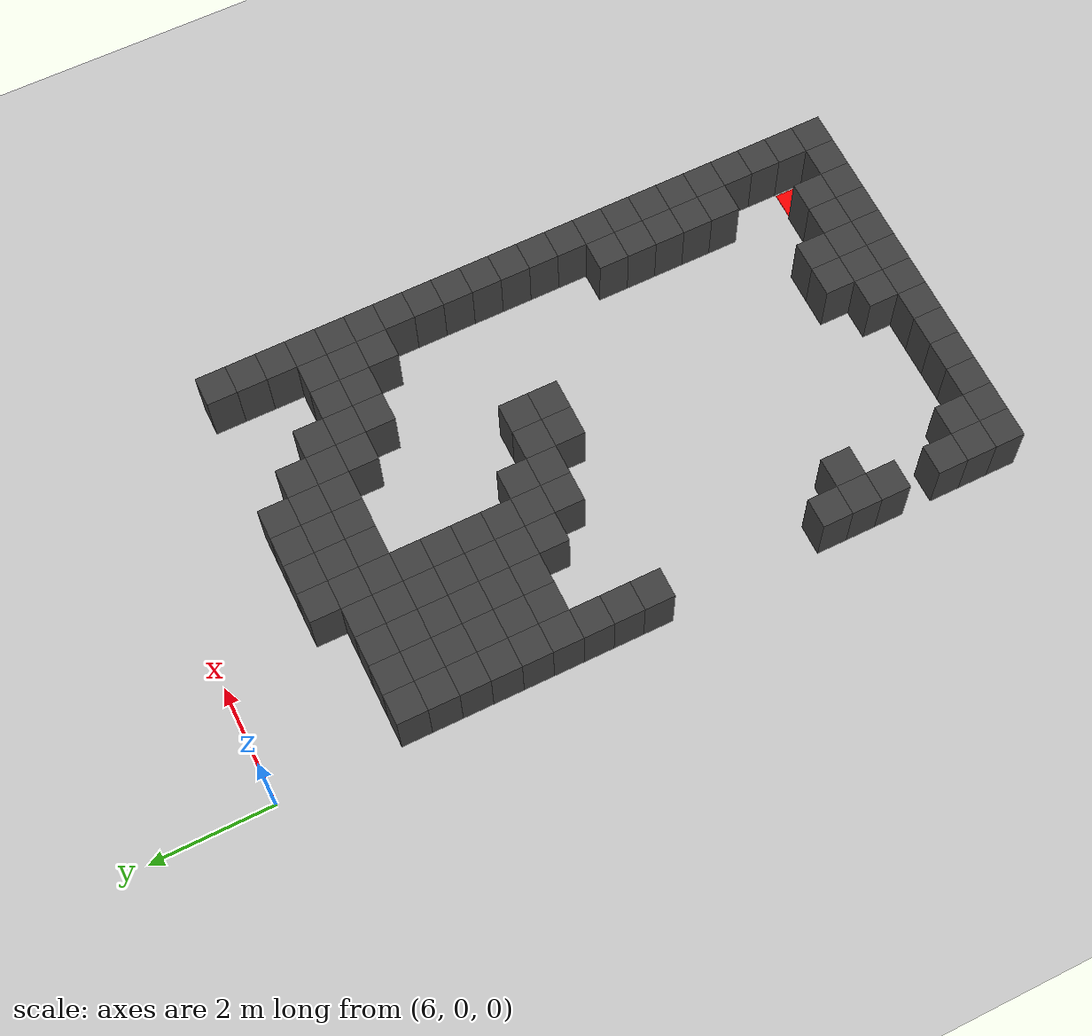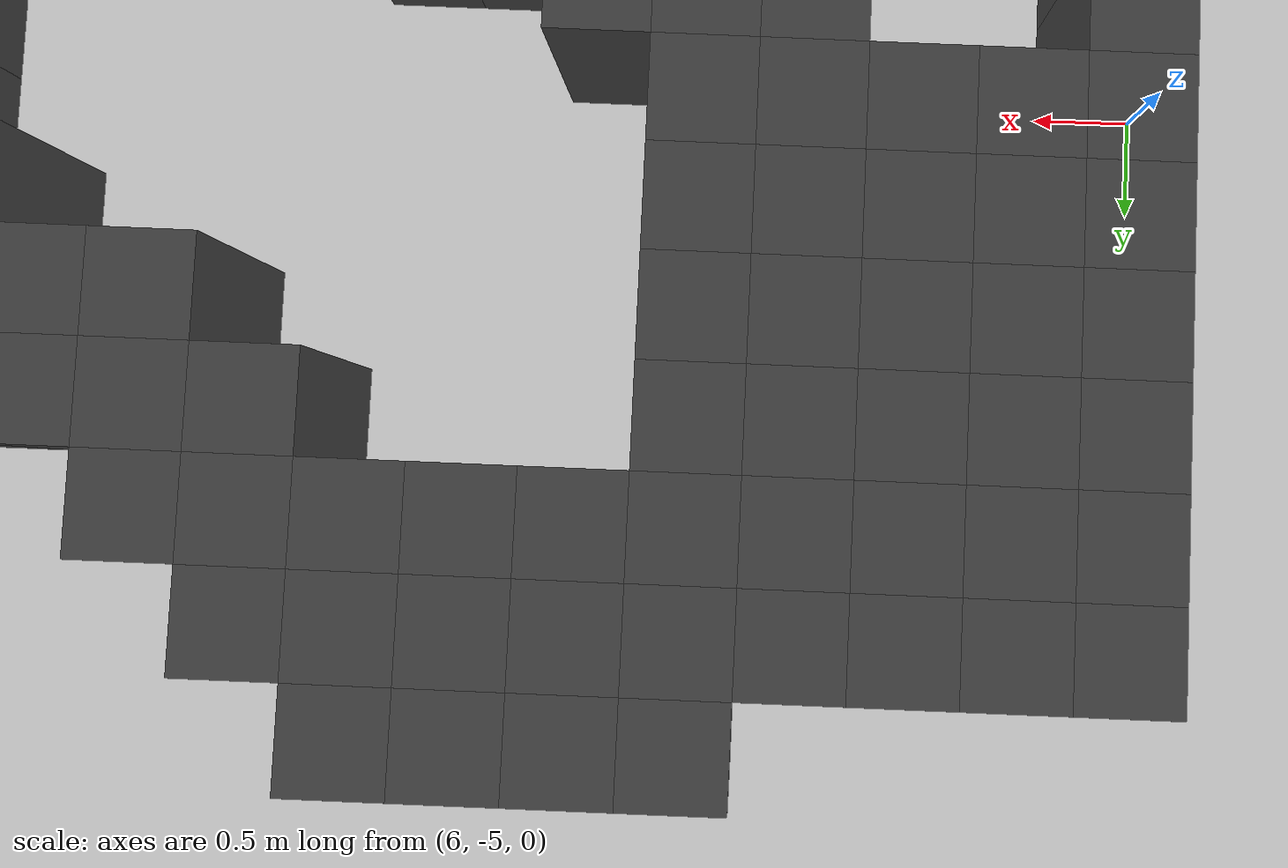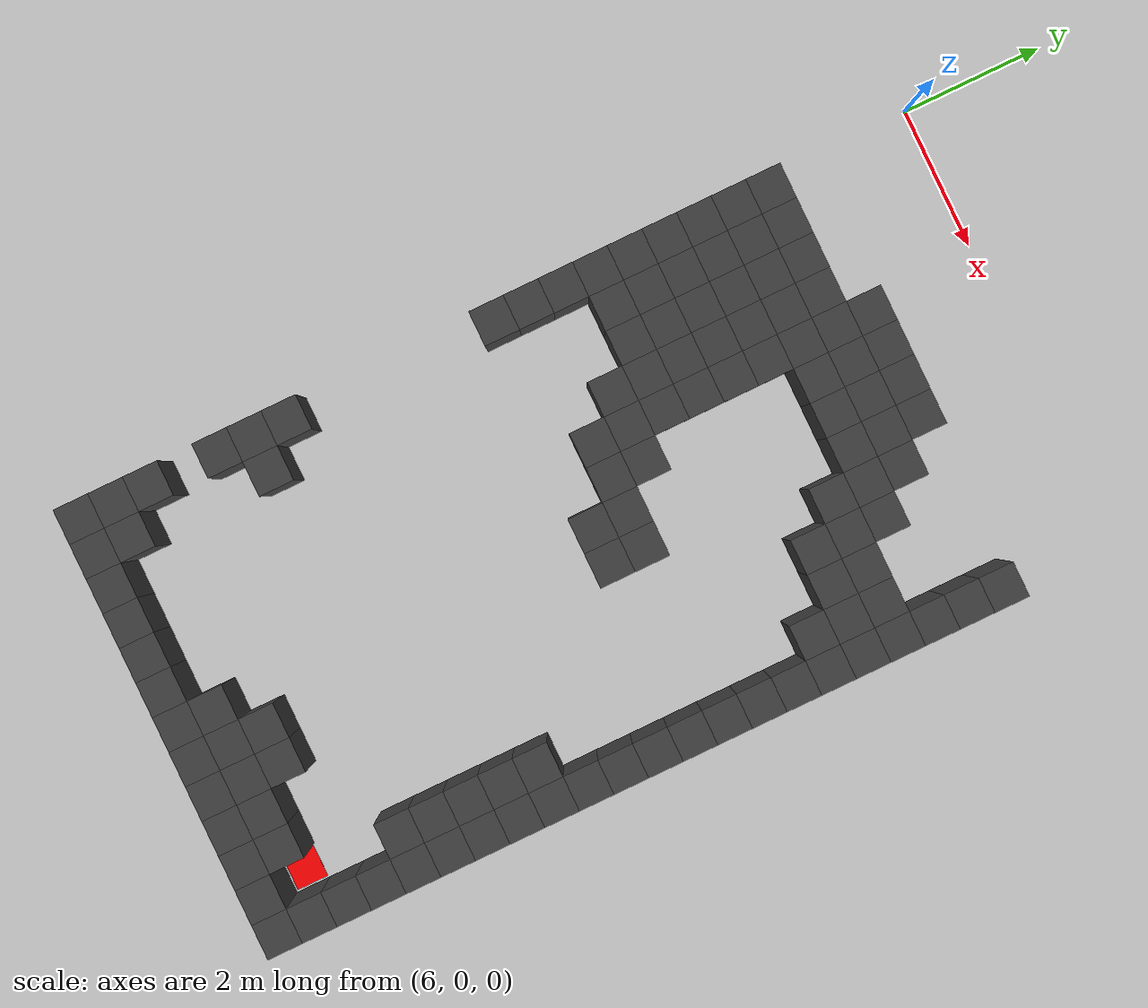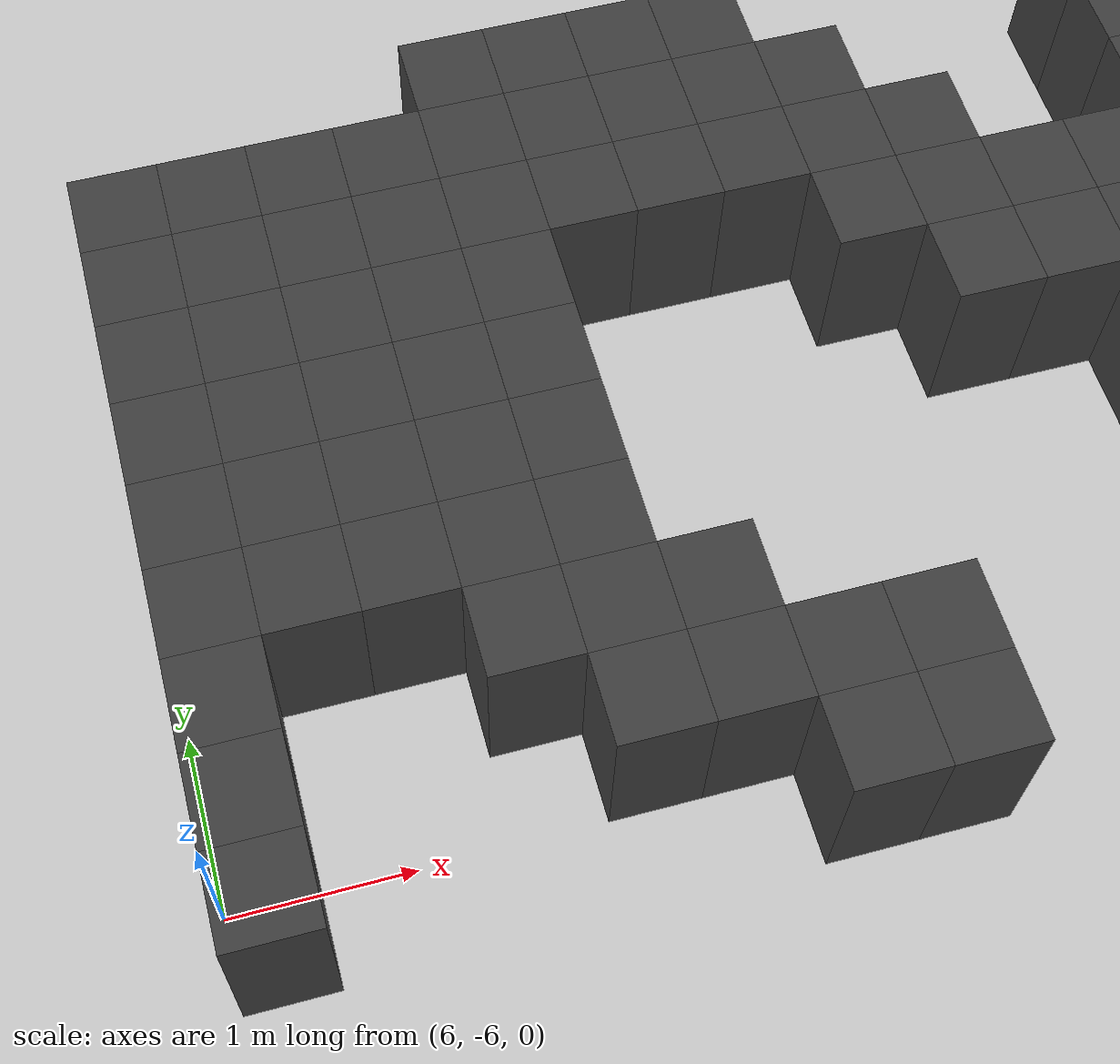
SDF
<sdf version="1.7">
 <world name="map_9061">
  <model name="ground_plane">
   <static>true</static>
   <link name="link">
    <collision name="collision">
     <geometry><plane><normal>0 0 1</normal><size>200 200</size></plane></geometry>
    </collision>
    <visual name="visual">
     <geometry><plane><normal>0 0 1</normal><size>200 200</size></plane></geometry>
     <material><ambient>0.8 0.8 0.8 1</ambient><diffuse>0.8 0.8 0.8 1</diffuse></material>
    </visual>
   </link>
  </model>
  <model name="maze_environment">
   <static>true</static>
   <link name="wall_480">
    <pose>8.250 -1.750 0.500 0 0 0</pose>
    <collision name="col"><geometry><box><size>0.5 0.5 1.0</size></box></geometry></collision>
    <visual name="vis">
     <geometry><box><size>0.5 0.5 1.0</size></box></geometry>
     <material><ambient>0.15 0.15 0.15 1</ambient><diffuse>0.25 0.25 0.25 1</diffuse></material>
    </visual>
   </link>
   <link name="wall_481">
    <pose>8.750 -1.750 0.500 0 0 0</pose>
    <collision name="col"><geometry><box><size>0.5 0.5 1.0</size></box></geometry></collision>
    <visual name="vis">
     <geometry><box><size>0.5 0.5 1.0</size></box></geometry>
     <material><ambient>0.15 0.15 0.15 1</ambient><diffuse>0.25 0.25 0.25 1</diffuse></material>
    </visual>
   </link>
   <link name="wall_482">
    <pose>9.250 -1.750 0.500 0 0 0</pose>
    <collision name="col"><geometry><box><size>0.5 0.5 1.0</size></box></geometry></collision>
    <visual name="vis">
     <geometry><box><size>0.5 0.5 1.0</size></box></geometry>
     <material><ambient>0.15 0.15 0.15 1</ambient><diffuse>0.25 0.25 0.25 1</diffuse></material>
    </visual>
   </link>
   <link name="wall_483">
    <pose>9.750 -1.750 0.500 0 0 0</pose>
    <collision name="col"><geometry><box><size>0.5 0.5 1.0</size></box></geometry></collision>
    <visual name="vis">
     <geometry><box><size>0.5 0.5 1.0</size></box></geometry>
     <material><ambient>0.15 0.15 0.15 1</ambient><diffuse>0.25 0.25 0.25 1</diffuse></material>
    </visual>
   </link>
   <link name="wall_484">
    <pose>12.250 -1.750 0.500 0 0 0</pose>
    <collision name="col"><geometry><box><size>0.5 0.5 1.0</size></box></geometry></collision>
    <visual name="vis">
     <geometry><box><size>0.5 0.5 1.0</size></box></geometry>
     <material><ambient>0.15 0.15 0.15 1</ambient><diffuse>0.25 0.25 0.25 1</diffuse></material>
    </visual>
   </link>
   <link name="wall_499">
    <pose>6.250 -2.250 0.500 0 0 0</pose>
    <collision name="col"><geometry><box><size>0.5 0.5 1.0</size></box></geometry></collision>
    <visual name="vis">
     <geometry><box><size>0.5 0.5 1.0</size></box></geometry>
     <material><ambient>0.15 0.15 0.15 1</ambient><diffuse>0.25 0.25 0.25 1</diffuse></material>
    </visual>
   </link>
   <link name="wall_500">
    <pose>6.750 -2.250 0.500 0 0 0</pose>
    <collision name="col"><geometry><box><size>0.5 0.5 1.0</size></box></geometry></collision>
    <visual name="vis">
     <geometry><box><size>0.5 0.5 1.0</size></box></geometry>
     <material><ambient>0.15 0.15 0.15 1</ambient><diffuse>0.25 0.25 0.25 1</diffuse></material>
    </visual>
   </link>
   <link name="wall_501">
    <pose>7.250 -2.250 0.500 0 0 0</pose>
    <collision name="col"><geometry><box><size>0.5 0.5 1.0</size></box></geometry></collision>
    <visual name="vis">
     <geometry><box><size>0.5 0.5 1.0</size></box></geometry>
     <material><ambient>0.15 0.15 0.15 1</ambient><diffuse>0.25 0.25 0.25 1</diffuse></material>
    </visual>
   </link>
   <link name="wall_502">
    <pose>7.750 -2.250 0.500 0 0 0</pose>
    <collision name="col"><geometry><box><size>0.5 0.5 1.0</size></box></geometry></collision>
    <visual name="vis">
     <geometry><box><size>0.5 0.5 1.0</size></box></geometry>
     <material><ambient>0.15 0.15 0.15 1</ambient><diffuse>0.25 0.25 0.25 1</diffuse></material>
    </visual>
   </link>
   <link name="wall_503">
    <pose>8.250 -2.250 0.500 0 0 0</pose>
    <collision name="col"><geometry><box><size>0.5 0.5 1.0</size></box></geometry></collision>
    <visual name="vis">
     <geometry><box><size>0.5 0.5 1.0</size></box></geometry>
     <material><ambient>0.15 0.15 0.15 1</ambient><diffuse>0.25 0.25 0.25 1</diffuse></material>
    </visual>
   </link>
   <link name="wall_504">
    <pose>8.750 -2.250 0.500 0 0 0</pose>
    <collision name="col"><geometry><box><size>0.5 0.5 1.0</size></box></geometry></collision>
    <visual name="vis">
     <geometry><box><size>0.5 0.5 1.0</size></box></geometry>
     <material><ambient>0.15 0.15 0.15 1</ambient><diffuse>0.25 0.25 0.25 1</diffuse></material>
    </visual>
   </link>
   <link name="wall_505">
    <pose>9.250 -2.250 0.500 0 0 0</pose>
    <collision name="col"><geometry><box><size>0.5 0.5 1.0</size></box></geometry></collision>
    <visual name="vis">
     <geometry><box><size>0.5 0.5 1.0</size></box></geometry>
     <material><ambient>0.15 0.15 0.15 1</ambient><diffuse>0.25 0.25 0.25 1</diffuse></material>
    </visual>
   </link>
   <link name="wall_506">
    <pose>9.750 -2.250 0.500 0 0 0</pose>
    <collision name="col"><geometry><box><size>0.5 0.5 1.0</size></box></geometry></collision>
    <visual name="vis">
     <geometry><box><size>0.5 0.5 1.0</size></box></geometry>
     <material><ambient>0.15 0.15 0.15 1</ambient><diffuse>0.25 0.25 0.25 1</diffuse></material>
    </visual>
   </link>
   <link name="wall_507">
    <pose>10.250 -2.250 0.500 0 0 0</pose>
    <collision name="col"><geometry><box><size>0.5 0.5 1.0</size></box></geometry></collision>
    <visual name="vis">
     <geometry><box><size>0.5 0.5 1.0</size></box></geometry>
     <material><ambient>0.15 0.15 0.15 1</ambient><diffuse>0.25 0.25 0.25 1</diffuse></material>
    </visual>
   </link>
   <link name="wall_508">
    <pose>12.250 -2.250 0.500 0 0 0</pose>
    <collision name="col"><geometry><box><size>0.5 0.5 1.0</size></box></geometry></collision>
    <visual name="vis">
     <geometry><box><size>0.5 0.5 1.0</size></box></geometry>
     <material><ambient>0.15 0.15 0.15 1</ambient><diffuse>0.25 0.25 0.25 1</diffuse></material>
    </visual>
   </link>
   <link name="wall_530">
    <pose>6.250 -2.750 0.500 0 0 0</pose>
    <collision name="col"><geometry><box><size>0.5 0.5 1.0</size></box></geometry></collision>
    <visual name="vis">
     <geometry><box><size>0.5 0.5 1.0</size></box></geometry>
     <material><ambient>0.15 0.15 0.15 1</ambient><diffuse>0.25 0.25 0.25 1</diffuse></material>
    </visual>
   </link>
   <link name="wall_531">
    <pose>6.750 -2.750 0.500 0 0 0</pose>
    <collision name="col"><geometry><box><size>0.5 0.5 1.0</size></box></geometry></collision>
    <visual name="vis">
     <geometry><box><size>0.5 0.5 1.0</size></box></geometry>
     <material><ambient>0.15 0.15 0.15 1</ambient><diffuse>0.25 0.25 0.25 1</diffuse></material>
    </visual>
   </link>
   <link name="wall_532">
    <pose>7.250 -2.750 0.500 0 0 0</pose>
    <collision name="col"><geometry><box><size>0.5 0.5 1.0</size></box></geometry></collision>
    <visual name="vis">
     <geometry><box><size>0.5 0.5 1.0</size></box></geometry>
     <material><ambient>0.15 0.15 0.15 1</ambient><diffuse>0.25 0.25 0.25 1</diffuse></material>
    </visual>
   </link>
   <link name="wall_533">
    <pose>7.750 -2.750 0.500 0 0 0</pose>
    <collision name="col"><geometry><box><size>0.5 0.5 1.0</size></box></geometry></collision>
    <visual name="vis">
     <geometry><box><size>0.5 0.5 1.0</size></box></geometry>
     <material><ambient>0.15 0.15 0.15 1</ambient><diffuse>0.25 0.25 0.25 1</diffuse></material>
    </visual>
   </link>
   <link name="wall_534">
    <pose>8.250 -2.750 0.500 0 0 0</pose>
    <collision name="col"><geometry><box><size>0.5 0.5 1.0</size></box></geometry></collision>
    <visual name="vis">
     <geometry><box><size>0.5 0.5 1.0</size></box></geometry>
     <material><ambient>0.15 0.15 0.15 1</ambient><diffuse>0.25 0.25 0.25 1</diffuse></material>
    </visual>
   </link>
   <link name="wall_535">
    <pose>8.750 -2.750 0.500 0 0 0</pose>
    <collision name="col"><geometry><box><size>0.5 0.5 1.0</size></box></geometry></collision>
    <visual name="vis">
     <geometry><box><size>0.5 0.5 1.0</size></box></geometry>
     <material><ambient>0.15 0.15 0.15 1</ambient><diffuse>0.25 0.25 0.25 1</diffuse></material>
    </visual>
   </link>
   <link name="wall_536">
    <pose>9.250 -2.750 0.500 0 0 0</pose>
    <collision name="col"><geometry><box><size>0.5 0.5 1.0</size></box></geometry></collision>
    <visual name="vis">
     <geometry><box><size>0.5 0.5 1.0</size></box></geometry>
     <material><ambient>0.15 0.15 0.15 1</ambient><diffuse>0.25 0.25 0.25 1</diffuse></material>
    </visual>
   </link>
   <link name="wall_537">
    <pose>9.750 -2.750 0.500 0 0 0</pose>
    <collision name="col"><geometry><box><size>0.5 0.5 1.0</size></box></geometry></collision>
    <visual name="vis">
     <geometry><box><size>0.5 0.5 1.0</size></box></geometry>
     <material><ambient>0.15 0.15 0.15 1</ambient><diffuse>0.25 0.25 0.25 1</diffuse></material>
    </visual>
   </link>
   <link name="wall_538">
    <pose>10.250 -2.750 0.500 0 0 0</pose>
    <collision name="col"><geometry><box><size>0.5 0.5 1.0</size></box></geometry></collision>
    <visual name="vis">
     <geometry><box><size>0.5 0.5 1.0</size></box></geometry>
     <material><ambient>0.15 0.15 0.15 1</ambient><diffuse>0.25 0.25 0.25 1</diffuse></material>
    </visual>
   </link>
   <link name="wall_539">
    <pose>10.750 -2.750 0.500 0 0 0</pose>
    <collision name="col"><geometry><box><size>0.5 0.5 1.0</size></box></geometry></collision>
    <visual name="vis">
     <geometry><box><size>0.5 0.5 1.0</size></box></geometry>
     <material><ambient>0.15 0.15 0.15 1</ambient><diffuse>0.25 0.25 0.25 1</diffuse></material>
    </visual>
   </link>
   <link name="wall_540">
    <pose>12.250 -2.750 0.500 0 0 0</pose>
    <collision name="col"><geometry><box><size>0.5 0.5 1.0</size></box></geometry></collision>
    <visual name="vis">
     <geometry><box><size>0.5 0.5 1.0</size></box></geometry>
     <material><ambient>0.15 0.15 0.15 1</ambient><diffuse>0.25 0.25 0.25 1</diffuse></material>
    </visual>
   </link>
   <link name="wall_561">
    <pose>6.250 -3.250 0.500 0 0 0</pose>
    <collision name="col"><geometry><box><size>0.5 0.5 1.0</size></box></geometry></collision>
    <visual name="vis">
     <geometry><box><size>0.5 0.5 1.0</size></box></geometry>
     <material><ambient>0.15 0.15 0.15 1</ambient><diffuse>0.25 0.25 0.25 1</diffuse></material>
    </visual>
   </link>
   <link name="wall_562">
    <pose>6.750 -3.250 0.500 0 0 0</pose>
    <collision name="col"><geometry><box><size>0.5 0.5 1.0</size></box></geometry></collision>
    <visual name="vis">
     <geometry><box><size>0.5 0.5 1.0</size></box></geometry>
     <material><ambient>0.15 0.15 0.15 1</ambient><diffuse>0.25 0.25 0.25 1</diffuse></material>
    </visual>
   </link>
   <link name="wall_563">
    <pose>7.250 -3.250 0.500 0 0 0</pose>
    <collision name="col"><geometry><box><size>0.5 0.5 1.0</size></box></geometry></collision>
    <visual name="vis">
     <geometry><box><size>0.5 0.5 1.0</size></box></geometry>
     <material><ambient>0.15 0.15 0.15 1</ambient><diffuse>0.25 0.25 0.25 1</diffuse></material>
    </visual>
   </link>
   <link name="wall_564">
    <pose>7.750 -3.250 0.500 0 0 0</pose>
    <collision name="col"><geometry><box><size>0.5 0.5 1.0</size></box></geometry></collision>
    <visual name="vis">
     <geometry><box><size>0.5 0.5 1.0</size></box></geometry>
     <material><ambient>0.15 0.15 0.15 1</ambient><diffuse>0.25 0.25 0.25 1</diffuse></material>
    </visual>
   </link>
   <link name="wall_565">
    <pose>8.250 -3.250 0.500 0 0 0</pose>
    <collision name="col"><geometry><box><size>0.5 0.5 1.0</size></box></geometry></collision>
    <visual name="vis">
     <geometry><box><size>0.5 0.5 1.0</size></box></geometry>
     <material><ambient>0.15 0.15 0.15 1</ambient><diffuse>0.25 0.25 0.25 1</diffuse></material>
    </visual>
   </link>
   <link name="wall_566">
    <pose>10.250 -3.250 0.500 0 0 0</pose>
    <collision name="col"><geometry><box><size>0.5 0.5 1.0</size></box></geometry></collision>
    <visual name="vis">
     <geometry><box><size>0.5 0.5 1.0</size></box></geometry>
     <material><ambient>0.15 0.15 0.15 1</ambient><diffuse>0.25 0.25 0.25 1</diffuse></material>
    </visual>
   </link>
   <link name="wall_567">
    <pose>10.750 -3.250 0.500 0 0 0</pose>
    <collision name="col"><geometry><box><size>0.5 0.5 1.0</size></box></geometry></collision>
    <visual name="vis">
     <geometry><box><size>0.5 0.5 1.0</size></box></geometry>
     <material><ambient>0.15 0.15 0.15 1</ambient><diffuse>0.25 0.25 0.25 1</diffuse></material>
    </visual>
   </link>
   <link name="wall_568">
    <pose>11.250 -3.250 0.500 0 0 0</pose>
    <collision name="col"><geometry><box><size>0.5 0.5 1.0</size></box></geometry></collision>
    <visual name="vis">
     <geometry><box><size>0.5 0.5 1.0</size></box></geometry>
     <material><ambient>0.15 0.15 0.15 1</ambient><diffuse>0.25 0.25 0.25 1</diffuse></material>
    </visual>
   </link>
   <link name="wall_569">
    <pose>11.750 -3.250 0.500 0 0 0</pose>
    <collision name="col"><geometry><box><size>0.5 0.5 1.0</size></box></geometry></collision>
    <visual name="vis">
     <geometry><box><size>0.5 0.5 1.0</size></box></geometry>
     <material><ambient>0.15 0.15 0.15 1</ambient><diffuse>0.25 0.25 0.25 1</diffuse></material>
    </visual>
   </link>
   <link name="wall_570">
    <pose>12.250 -3.250 0.500 0 0 0</pose>
    <collision name="col"><geometry><box><size>0.5 0.5 1.0</size></box></geometry></collision>
    <visual name="vis">
     <geometry><box><size>0.5 0.5 1.0</size></box></geometry>
     <material><ambient>0.15 0.15 0.15 1</ambient><diffuse>0.25 0.25 0.25 1</diffuse></material>
    </visual>
   </link>
   <link name="wall_591">
    <pose>6.250 -3.750 0.500 0 0 0</pose>
    <collision name="col"><geometry><box><size>0.5 0.5 1.0</size></box></geometry></collision>
    <visual name="vis">
     <geometry><box><size>0.5 0.5 1.0</size></box></geometry>
     <material><ambient>0.15 0.15 0.15 1</ambient><diffuse>0.25 0.25 0.25 1</diffuse></material>
    </visual>
   </link>
   <link name="wall_592">
    <pose>6.750 -3.750 0.500 0 0 0</pose>
    <collision name="col"><geometry><box><size>0.5 0.5 1.0</size></box></geometry></collision>
    <visual name="vis">
     <geometry><box><size>0.5 0.5 1.0</size></box></geometry>
     <material><ambient>0.15 0.15 0.15 1</ambient><diffuse>0.25 0.25 0.25 1</diffuse></material>
    </visual>
   </link>
   <link name="wall_593">
    <pose>7.250 -3.750 0.500 0 0 0</pose>
    <collision name="col"><geometry><box><size>0.5 0.5 1.0</size></box></geometry></collision>
    <visual name="vis">
     <geometry><box><size>0.5 0.5 1.0</size></box></geometry>
     <material><ambient>0.15 0.15 0.15 1</ambient><diffuse>0.25 0.25 0.25 1</diffuse></material>
    </visual>
   </link>
   <link name="wall_594">
    <pose>7.750 -3.750 0.500 0 0 0</pose>
    <collision name="col"><geometry><box><size>0.5 0.5 1.0</size></box></geometry></collision>
    <visual name="vis">
     <geometry><box><size>0.5 0.5 1.0</size></box></geometry>
     <material><ambient>0.15 0.15 0.15 1</ambient><diffuse>0.25 0.25 0.25 1</diffuse></material>
    </visual>
   </link>
   <link name="wall_595">
    <pose>8.250 -3.750 0.500 0 0 0</pose>
    <collision name="col"><geometry><box><size>0.5 0.5 1.0</size></box></geometry></collision>
    <visual name="vis">
     <geometry><box><size>0.5 0.5 1.0</size></box></geometry>
     <material><ambient>0.15 0.15 0.15 1</ambient><diffuse>0.25 0.25 0.25 1</diffuse></material>
    </visual>
   </link>
   <link name="wall_596">
    <pose>10.750 -3.750 0.500 0 0 0</pose>
    <collision name="col"><geometry><box><size>0.5 0.5 1.0</size></box></geometry></collision>
    <visual name="vis">
     <geometry><box><size>0.5 0.5 1.0</size></box></geometry>
     <material><ambient>0.15 0.15 0.15 1</ambient><diffuse>0.25 0.25 0.25 1</diffuse></material>
    </visual>
   </link>
   <link name="wall_597">
    <pose>11.250 -3.750 0.500 0 0 0</pose>
    <collision name="col"><geometry><box><size>0.5 0.5 1.0</size></box></geometry></collision>
    <visual name="vis">
     <geometry><box><size>0.5 0.5 1.0</size></box></geometry>
     <material><ambient>0.15 0.15 0.15 1</ambient><diffuse>0.25 0.25 0.25 1</diffuse></material>
    </visual>
   </link>
   <link name="wall_598">
    <pose>11.750 -3.750 0.500 0 0 0</pose>
    <collision name="col"><geometry><box><size>0.5 0.5 1.0</size></box></geometry></collision>
    <visual name="vis">
     <geometry><box><size>0.5 0.5 1.0</size></box></geometry>
     <material><ambient>0.15 0.15 0.15 1</ambient><diffuse>0.25 0.25 0.25 1</diffuse></material>
    </visual>
   </link>
   <link name="wall_599">
    <pose>12.250 -3.750 0.500 0 0 0</pose>
    <collision name="col"><geometry><box><size>0.5 0.5 1.0</size></box></geometry></collision>
    <visual name="vis">
     <geometry><box><size>0.5 0.5 1.0</size></box></geometry>
     <material><ambient>0.15 0.15 0.15 1</ambient><diffuse>0.25 0.25 0.25 1</diffuse></material>
    </visual>
   </link>
   <link name="wall_617">
    <pose>6.250 -4.250 0.500 0 0 0</pose>
    <collision name="col"><geometry><box><size>0.5 0.5 1.0</size></box></geometry></collision>
    <visual name="vis">
     <geometry><box><size>0.5 0.5 1.0</size></box></geometry>
     <material><ambient>0.15 0.15 0.15 1</ambient><diffuse>0.25 0.25 0.25 1</diffuse></material>
    </visual>
   </link>
   <link name="wall_618">
    <pose>6.750 -4.250 0.500 0 0 0</pose>
    <collision name="col"><geometry><box><size>0.5 0.5 1.0</size></box></geometry></collision>
    <visual name="vis">
     <geometry><box><size>0.5 0.5 1.0</size></box></geometry>
     <material><ambient>0.15 0.15 0.15 1</ambient><diffuse>0.25 0.25 0.25 1</diffuse></material>
    </visual>
   </link>
   <link name="wall_619">
    <pose>7.250 -4.250 0.500 0 0 0</pose>
    <collision name="col"><geometry><box><size>0.5 0.5 1.0</size></box></geometry></collision>
    <visual name="vis">
     <geometry><box><size>0.5 0.5 1.0</size></box></geometry>
     <material><ambient>0.15 0.15 0.15 1</ambient><diffuse>0.25 0.25 0.25 1</diffuse></material>
    </visual>
   </link>
   <link name="wall_620">
    <pose>7.750 -4.250 0.500 0 0 0</pose>
    <collision name="col"><geometry><box><size>0.5 0.5 1.0</size></box></geometry></collision>
    <visual name="vis">
     <geometry><box><size>0.5 0.5 1.0</size></box></geometry>
     <material><ambient>0.15 0.15 0.15 1</ambient><diffuse>0.25 0.25 0.25 1</diffuse></material>
    </visual>
   </link>
   <link name="wall_621">
    <pose>8.250 -4.250 0.500 0 0 0</pose>
    <collision name="col"><geometry><box><size>0.5 0.5 1.0</size></box></geometry></collision>
    <visual name="vis">
     <geometry><box><size>0.5 0.5 1.0</size></box></geometry>
     <material><ambient>0.15 0.15 0.15 1</ambient><diffuse>0.25 0.25 0.25 1</diffuse></material>
    </visual>
   </link>
   <link name="wall_622">
    <pose>11.750 -4.250 0.500 0 0 0</pose>
    <collision name="col"><geometry><box><size>0.5 0.5 1.0</size></box></geometry></collision>
    <visual name="vis">
     <geometry><box><size>0.5 0.5 1.0</size></box></geometry>
     <material><ambient>0.15 0.15 0.15 1</ambient><diffuse>0.25 0.25 0.25 1</diffuse></material>
    </visual>
   </link>
   <link name="wall_623">
    <pose>12.250 -4.250 0.500 0 0 0</pose>
    <collision name="col"><geometry><box><size>0.5 0.5 1.0</size></box></geometry></collision>
    <visual name="vis">
     <geometry><box><size>0.5 0.5 1.0</size></box></geometry>
     <material><ambient>0.15 0.15 0.15 1</ambient><diffuse>0.25 0.25 0.25 1</diffuse></material>
    </visual>
   </link>
   <link name="wall_637">
    <pose>6.250 -4.750 0.500 0 0 0</pose>
    <collision name="col"><geometry><box><size>0.5 0.5 1.0</size></box></geometry></collision>
    <visual name="vis">
     <geometry><box><size>0.5 0.5 1.0</size></box></geometry>
     <material><ambient>0.15 0.15 0.15 1</ambient><diffuse>0.25 0.25 0.25 1</diffuse></material>
    </visual>
   </link>
   <link name="wall_638">
    <pose>6.750 -4.750 0.500 0 0 0</pose>
    <collision name="col"><geometry><box><size>0.5 0.5 1.0</size></box></geometry></collision>
    <visual name="vis">
     <geometry><box><size>0.5 0.5 1.0</size></box></geometry>
     <material><ambient>0.15 0.15 0.15 1</ambient><diffuse>0.25 0.25 0.25 1</diffuse></material>
    </visual>
   </link>
   <link name="wall_639">
    <pose>7.250 -4.750 0.500 0 0 0</pose>
    <collision name="col"><geometry><box><size>0.5 0.5 1.0</size></box></geometry></collision>
    <visual name="vis">
     <geometry><box><size>0.5 0.5 1.0</size></box></geometry>
     <material><ambient>0.15 0.15 0.15 1</ambient><diffuse>0.25 0.25 0.25 1</diffuse></material>
    </visual>
   </link>
   <link name="wall_640">
    <pose>7.750 -4.750 0.500 0 0 0</pose>
    <collision name="col"><geometry><box><size>0.5 0.5 1.0</size></box></geometry></collision>
    <visual name="vis">
     <geometry><box><size>0.5 0.5 1.0</size></box></geometry>
     <material><ambient>0.15 0.15 0.15 1</ambient><diffuse>0.25 0.25 0.25 1</diffuse></material>
    </visual>
   </link>
   <link name="wall_641">
    <pose>8.250 -4.750 0.500 0 0 0</pose>
    <collision name="col"><geometry><box><size>0.5 0.5 1.0</size></box></geometry></collision>
    <visual name="vis">
     <geometry><box><size>0.5 0.5 1.0</size></box></geometry>
     <material><ambient>0.15 0.15 0.15 1</ambient><diffuse>0.25 0.25 0.25 1</diffuse></material>
    </visual>
   </link>
   <link name="wall_642">
    <pose>12.250 -4.750 0.500 0 0 0</pose>
    <collision name="col"><geometry><box><size>0.5 0.5 1.0</size></box></geometry></collision>
    <visual name="vis">
     <geometry><box><size>0.5 0.5 1.0</size></box></geometry>
     <material><ambient>0.15 0.15 0.15 1</ambient><diffuse>0.25 0.25 0.25 1</diffuse></material>
    </visual>
   </link>
   <link name="wall_652">
    <pose>6.250 -5.250 0.500 0 0 0</pose>
    <collision name="col"><geometry><box><size>0.5 0.5 1.0</size></box></geometry></collision>
    <visual name="vis">
     <geometry><box><size>0.5 0.5 1.0</size></box></geometry>
     <material><ambient>0.15 0.15 0.15 1</ambient><diffuse>0.25 0.25 0.25 1</diffuse></material>
    </visual>
   </link>
   <link name="wall_653">
    <pose>7.750 -5.250 0.500 0 0 0</pose>
    <collision name="col"><geometry><box><size>0.5 0.5 1.0</size></box></geometry></collision>
    <visual name="vis">
     <geometry><box><size>0.5 0.5 1.0</size></box></geometry>
     <material><ambient>0.15 0.15 0.15 1</ambient><diffuse>0.25 0.25 0.25 1</diffuse></material>
    </visual>
   </link>
   <link name="wall_654">
    <pose>8.250 -5.250 0.500 0 0 0</pose>
    <collision name="col"><geometry><box><size>0.5 0.5 1.0</size></box></geometry></collision>
    <visual name="vis">
     <geometry><box><size>0.5 0.5 1.0</size></box></geometry>
     <material><ambient>0.15 0.15 0.15 1</ambient><diffuse>0.25 0.25 0.25 1</diffuse></material>
    </visual>
   </link>
   <link name="wall_655">
    <pose>8.750 -5.250 0.500 0 0 0</pose>
    <collision name="col"><geometry><box><size>0.5 0.5 1.0</size></box></geometry></collision>
    <visual name="vis">
     <geometry><box><size>0.5 0.5 1.0</size></box></geometry>
     <material><ambient>0.15 0.15 0.15 1</ambient><diffuse>0.25 0.25 0.25 1</diffuse></material>
    </visual>
   </link>
   <link name="wall_656">
    <pose>12.250 -5.250 0.500 0 0 0</pose>
    <collision name="col"><geometry><box><size>0.5 0.5 1.0</size></box></geometry></collision>
    <visual name="vis">
     <geometry><box><size>0.5 0.5 1.0</size></box></geometry>
     <material><ambient>0.15 0.15 0.15 1</ambient><diffuse>0.25 0.25 0.25 1</diffuse></material>
    </visual>
   </link>
   <link name="wall_667">
    <pose>6.250 -5.750 0.500 0 0 0</pose>
    <collision name="col"><geometry><box><size>0.5 0.5 1.0</size></box></geometry></collision>
    <visual name="vis">
     <geometry><box><size>0.5 0.5 1.0</size></box></geometry>
     <material><ambient>0.15 0.15 0.15 1</ambient><diffuse>0.25 0.25 0.25 1</diffuse></material>
    </visual>
   </link>
   <link name="wall_668">
    <pose>8.250 -5.750 0.500 0 0 0</pose>
    <collision name="col"><geometry><box><size>0.5 0.5 1.0</size></box></geometry></collision>
    <visual name="vis">
     <geometry><box><size>0.5 0.5 1.0</size></box></geometry>
     <material><ambient>0.15 0.15 0.15 1</ambient><diffuse>0.25 0.25 0.25 1</diffuse></material>
    </visual>
   </link>
   <link name="wall_669">
    <pose>8.750 -5.750 0.500 0 0 0</pose>
    <collision name="col"><geometry><box><size>0.5 0.5 1.0</size></box></geometry></collision>
    <visual name="vis">
     <geometry><box><size>0.5 0.5 1.0</size></box></geometry>
     <material><ambient>0.15 0.15 0.15 1</ambient><diffuse>0.25 0.25 0.25 1</diffuse></material>
    </visual>
   </link>
   <link name="wall_670">
    <pose>9.250 -5.750 0.500 0 0 0</pose>
    <collision name="col"><geometry><box><size>0.5 0.5 1.0</size></box></geometry></collision>
    <visual name="vis">
     <geometry><box><size>0.5 0.5 1.0</size></box></geometry>
     <material><ambient>0.15 0.15 0.15 1</ambient><diffuse>0.25 0.25 0.25 1</diffuse></material>
    </visual>
   </link>
   <link name="wall_671">
    <pose>9.750 -5.750 0.500 0 0 0</pose>
    <collision name="col"><geometry><box><size>0.5 0.5 1.0</size></box></geometry></collision>
    <visual name="vis">
     <geometry><box><size>0.5 0.5 1.0</size></box></geometry>
     <material><ambient>0.15 0.15 0.15 1</ambient><diffuse>0.25 0.25 0.25 1</diffuse></material>
    </visual>
   </link>
   <link name="wall_672">
    <pose>12.250 -5.750 0.500 0 0 0</pose>
    <collision name="col"><geometry><box><size>0.5 0.5 1.0</size></box></geometry></collision>
    <visual name="vis">
     <geometry><box><size>0.5 0.5 1.0</size></box></geometry>
     <material><ambient>0.15 0.15 0.15 1</ambient><diffuse>0.25 0.25 0.25 1</diffuse></material>
    </visual>
   </link>
   <link name="wall_685">
    <pose>6.250 -6.250 0.500 0 0 0</pose>
    <collision name="col"><geometry><box><size>0.5 0.5 1.0</size></box></geometry></collision>
    <visual name="vis">
     <geometry><box><size>0.5 0.5 1.0</size></box></geometry>
     <material><ambient>0.15 0.15 0.15 1</ambient><diffuse>0.25 0.25 0.25 1</diffuse></material>
    </visual>
   </link>
   <link name="wall_686">
    <pose>9.250 -6.250 0.500 0 0 0</pose>
    <collision name="col"><geometry><box><size>0.5 0.5 1.0</size></box></geometry></collision>
    <visual name="vis">
     <geometry><box><size>0.5 0.5 1.0</size></box></geometry>
     <material><ambient>0.15 0.15 0.15 1</ambient><diffuse>0.25 0.25 0.25 1</diffuse></material>
    </visual>
   </link>
   <link name="wall_687">
    <pose>9.750 -6.250 0.500 0 0 0</pose>
    <collision name="col"><geometry><box><size>0.5 0.5 1.0</size></box></geometry></collision>
    <visual name="vis">
     <geometry><box><size>0.5 0.5 1.0</size></box></geometry>
     <material><ambient>0.15 0.15 0.15 1</ambient><diffuse>0.25 0.25 0.25 1</diffuse></material>
    </visual>
   </link>
   <link name="wall_688">
    <pose>12.250 -6.250 0.500 0 0 0</pose>
    <collision name="col"><geometry><box><size>0.5 0.5 1.0</size></box></geometry></collision>
    <visual name="vis">
     <geometry><box><size>0.5 0.5 1.0</size></box></geometry>
     <material><ambient>0.15 0.15 0.15 1</ambient><diffuse>0.25 0.25 0.25 1</diffuse></material>
    </visual>
   </link>
   <link name="wall_706">
    <pose>12.250 -6.750 0.500 0 0 0</pose>
    <collision name="col"><geometry><box><size>0.5 0.5 1.0</size></box></geometry></collision>
    <visual name="vis">
     <geometry><box><size>0.5 0.5 1.0</size></box></geometry>
     <material><ambient>0.15 0.15 0.15 1</ambient><diffuse>0.25 0.25 0.25 1</diffuse></material>
    </visual>
   </link>
   <link name="wall_723">
    <pose>12.250 -7.250 0.500 0 0 0</pose>
    <collision name="col"><geometry><box><size>0.5 0.5 1.0</size></box></geometry></collision>
    <visual name="vis">
     <geometry><box><size>0.5 0.5 1.0</size></box></geometry>
     <material><ambient>0.15 0.15 0.15 1</ambient><diffuse>0.25 0.25 0.25 1</diffuse></material>
    </visual>
   </link>
   <link name="wall_736">
    <pose>12.250 -7.750 0.500 0 0 0</pose>
    <collision name="col"><geometry><box><size>0.5 0.5 1.0</size></box></geometry></collision>
    <visual name="vis">
     <geometry><box><size>0.5 0.5 1.0</size></box></geometry>
     <material><ambient>0.15 0.15 0.15 1</ambient><diffuse>0.25 0.25 0.25 1</diffuse></material>
    </visual>
   </link>
   <link name="wall_745">
    <pose>11.750 -8.250 0.500 0 0 0</pose>
    <collision name="col"><geometry><box><size>0.5 0.5 1.0</size></box></geometry></collision>
    <visual name="vis">
     <geometry><box><size>0.5 0.5 1.0</size></box></geometry>
     <material><ambient>0.15 0.15 0.15 1</ambient><diffuse>0.25 0.25 0.25 1</diffuse></material>
    </visual>
   </link>
   <link name="wall_746">
    <pose>12.250 -8.250 0.500 0 0 0</pose>
    <collision name="col"><geometry><box><size>0.5 0.5 1.0</size></box></geometry></collision>
    <visual name="vis">
     <geometry><box><size>0.5 0.5 1.0</size></box></geometry>
     <material><ambient>0.15 0.15 0.15 1</ambient><diffuse>0.25 0.25 0.25 1</diffuse></material>
    </visual>
   </link>
   <link name="wall_755">
    <pose>11.750 -8.750 0.500 0 0 0</pose>
    <collision name="col"><geometry><box><size>0.5 0.5 1.0</size></box></geometry></collision>
    <visual name="vis">
     <geometry><box><size>0.5 0.5 1.0</size></box></geometry>
     <material><ambient>0.15 0.15 0.15 1</ambient><diffuse>0.25 0.25 0.25 1</diffuse></material>
    </visual>
   </link>
   <link name="wall_756">
    <pose>12.250 -8.750 0.500 0 0 0</pose>
    <collision name="col"><geometry><box><size>0.5 0.5 1.0</size></box></geometry></collision>
    <visual name="vis">
     <geometry><box><size>0.5 0.5 1.0</size></box></geometry>
     <material><ambient>0.15 0.15 0.15 1</ambient><diffuse>0.25 0.25 0.25 1</diffuse></material>
    </visual>
   </link>
   <link name="wall_770">
    <pose>6.250 -9.250 0.500 0 0 0</pose>
    <collision name="col"><geometry><box><size>0.5 0.5 1.0</size></box></geometry></collision>
    <visual name="vis">
     <geometry><box><size>0.5 0.5 1.0</size></box></geometry>
     <material><ambient>0.15 0.15 0.15 1</ambient><diffuse>0.25 0.25 0.25 1</diffuse></material>
    </visual>
   </link>
   <link name="wall_771">
    <pose>11.750 -9.250 0.500 0 0 0</pose>
    <collision name="col"><geometry><box><size>0.5 0.5 1.0</size></box></geometry></collision>
    <visual name="vis">
     <geometry><box><size>0.5 0.5 1.0</size></box></geometry>
     <material><ambient>0.15 0.15 0.15 1</ambient><diffuse>0.25 0.25 0.25 1</diffuse></material>
    </visual>
   </link>
   <link name="wall_772">
    <pose>12.250 -9.250 0.500 0 0 0</pose>
    <collision name="col"><geometry><box><size>0.5 0.5 1.0</size></box></geometry></collision>
    <visual name="vis">
     <geometry><box><size>0.5 0.5 1.0</size></box></geometry>
     <material><ambient>0.15 0.15 0.15 1</ambient><diffuse>0.25 0.25 0.25 1</diffuse></material>
    </visual>
   </link>
   <link name="wall_785">
    <pose>6.250 -9.750 0.500 0 0 0</pose>
    <collision name="col"><geometry><box><size>0.5 0.5 1.0</size></box></geometry></collision>
    <visual name="vis">
     <geometry><box><size>0.5 0.5 1.0</size></box></geometry>
     <material><ambient>0.15 0.15 0.15 1</ambient><diffuse>0.25 0.25 0.25 1</diffuse></material>
    </visual>
   </link>
   <link name="wall_786">
    <pose>6.750 -9.750 0.500 0 0 0</pose>
    <collision name="col"><geometry><box><size>0.5 0.5 1.0</size></box></geometry></collision>
    <visual name="vis">
     <geometry><box><size>0.5 0.5 1.0</size></box></geometry>
     <material><ambient>0.15 0.15 0.15 1</ambient><diffuse>0.25 0.25 0.25 1</diffuse></material>
    </visual>
   </link>
   <link name="wall_787">
    <pose>11.750 -9.750 0.500 0 0 0</pose>
    <collision name="col"><geometry><box><size>0.5 0.5 1.0</size></box></geometry></collision>
    <visual name="vis">
     <geometry><box><size>0.5 0.5 1.0</size></box></geometry>
     <material><ambient>0.15 0.15 0.15 1</ambient><diffuse>0.25 0.25 0.25 1</diffuse></material>
    </visual>
   </link>
   <link name="wall_788">
    <pose>12.250 -9.750 0.500 0 0 0</pose>
    <collision name="col"><geometry><box><size>0.5 0.5 1.0</size></box></geometry></collision>
    <visual name="vis">
     <geometry><box><size>0.5 0.5 1.0</size></box></geometry>
     <material><ambient>0.15 0.15 0.15 1</ambient><diffuse>0.25 0.25 0.25 1</diffuse></material>
    </visual>
   </link>
   <link name="wall_802">
    <pose>6.250 -10.250 0.500 0 0 0</pose>
    <collision name="col"><geometry><box><size>0.5 0.5 1.0</size></box></geometry></collision>
    <visual name="vis">
     <geometry><box><size>0.5 0.5 1.0</size></box></geometry>
     <material><ambient>0.15 0.15 0.15 1</ambient><diffuse>0.25 0.25 0.25 1</diffuse></material>
    </visual>
   </link>
   <link name="wall_803">
    <pose>11.750 -10.250 0.500 0 0 0</pose>
    <collision name="col"><geometry><box><size>0.5 0.5 1.0</size></box></geometry></collision>
    <visual name="vis">
     <geometry><box><size>0.5 0.5 1.0</size></box></geometry>
     <material><ambient>0.15 0.15 0.15 1</ambient><diffuse>0.25 0.25 0.25 1</diffuse></material>
    </visual>
   </link>
   <link name="wall_804">
    <pose>12.250 -10.250 0.500 0 0 0</pose>
    <collision name="col"><geometry><box><size>0.5 0.5 1.0</size></box></geometry></collision>
    <visual name="vis">
     <geometry><box><size>0.5 0.5 1.0</size></box></geometry>
     <material><ambient>0.15 0.15 0.15 1</ambient><diffuse>0.25 0.25 0.25 1</diffuse></material>
    </visual>
   </link>
   <link name="wall_823">
    <pose>12.250 -10.750 0.500 0 0 0</pose>
    <collision name="col"><geometry><box><size>0.5 0.5 1.0</size></box></geometry></collision>
    <visual name="vis">
     <geometry><box><size>0.5 0.5 1.0</size></box></geometry>
     <material><ambient>0.15 0.15 0.15 1</ambient><diffuse>0.25 0.25 0.25 1</diffuse></material>
    </visual>
   </link>
   <link name="wall_847">
    <pose>6.250 -11.250 0.500 0 0 0</pose>
    <collision name="col"><geometry><box><size>0.5 0.5 1.0</size></box></geometry></collision>
    <visual name="vis">
     <geometry><box><size>0.5 0.5 1.0</size></box></geometry>
     <material><ambient>0.15 0.15 0.15 1</ambient><diffuse>0.25 0.25 0.25 1</diffuse></material>
    </visual>
   </link>
   <link name="wall_848">
    <pose>9.750 -11.250 0.500 0 0 0</pose>
    <collision name="col"><geometry><box><size>0.5 0.5 1.0</size></box></geometry></collision>
    <visual name="vis">
     <geometry><box><size>0.5 0.5 1.0</size></box></geometry>
     <material><ambient>0.15 0.15 0.15 1</ambient><diffuse>0.25 0.25 0.25 1</diffuse></material>
    </visual>
   </link>
   <link name="wall_849">
    <pose>10.250 -11.250 0.500 0 0 0</pose>
    <collision name="col"><geometry><box><size>0.5 0.5 1.0</size></box></geometry></collision>
    <visual name="vis">
     <geometry><box><size>0.5 0.5 1.0</size></box></geometry>
     <material><ambient>0.15 0.15 0.15 1</ambient><diffuse>0.25 0.25 0.25 1</diffuse></material>
    </visual>
   </link>
   <link name="wall_850">
    <pose>12.250 -11.250 0.500 0 0 0</pose>
    <collision name="col"><geometry><box><size>0.5 0.5 1.0</size></box></geometry></collision>
    <visual name="vis">
     <geometry><box><size>0.5 0.5 1.0</size></box></geometry>
     <material><ambient>0.15 0.15 0.15 1</ambient><diffuse>0.25 0.25 0.25 1</diffuse></material>
    </visual>
   </link>
   <link name="wall_879">
    <pose>6.250 -11.750 0.500 0 0 0</pose>
    <collision name="col"><geometry><box><size>0.5 0.5 1.0</size></box></geometry></collision>
    <visual name="vis">
     <geometry><box><size>0.5 0.5 1.0</size></box></geometry>
     <material><ambient>0.15 0.15 0.15 1</ambient><diffuse>0.25 0.25 0.25 1</diffuse></material>
    </visual>
   </link>
   <link name="wall_880">
    <pose>6.750 -11.750 0.500 0 0 0</pose>
    <collision name="col"><geometry><box><size>0.5 0.5 1.0</size></box></geometry></collision>
    <visual name="vis">
     <geometry><box><size>0.5 0.5 1.0</size></box></geometry>
     <material><ambient>0.15 0.15 0.15 1</ambient><diffuse>0.25 0.25 0.25 1</diffuse></material>
    </visual>
   </link>
   <link name="wall_881">
    <pose>9.250 -11.750 0.500 0 0 0</pose>
    <collision name="col"><geometry><box><size>0.5 0.5 1.0</size></box></geometry></collision>
    <visual name="vis">
     <geometry><box><size>0.5 0.5 1.0</size></box></geometry>
     <material><ambient>0.15 0.15 0.15 1</ambient><diffuse>0.25 0.25 0.25 1</diffuse></material>
    </visual>
   </link>
   <link name="wall_882">
    <pose>9.750 -11.750 0.500 0 0 0</pose>
    <collision name="col"><geometry><box><size>0.5 0.5 1.0</size></box></geometry></collision>
    <visual name="vis">
     <geometry><box><size>0.5 0.5 1.0</size></box></geometry>
     <material><ambient>0.15 0.15 0.15 1</ambient><diffuse>0.25 0.25 0.25 1</diffuse></material>
    </visual>
   </link>
   <link name="wall_883">
    <pose>10.250 -11.750 0.500 0 0 0</pose>
    <collision name="col"><geometry><box><size>0.5 0.5 1.0</size></box></geometry></collision>
    <visual name="vis">
     <geometry><box><size>0.5 0.5 1.0</size></box></geometry>
     <material><ambient>0.15 0.15 0.15 1</ambient><diffuse>0.25 0.25 0.25 1</diffuse></material>
    </visual>
   </link>
   <link name="wall_884">
    <pose>10.750 -11.750 0.500 0 0 0</pose>
    <collision name="col"><geometry><box><size>0.5 0.5 1.0</size></box></geometry></collision>
    <visual name="vis">
     <geometry><box><size>0.5 0.5 1.0</size></box></geometry>
     <material><ambient>0.15 0.15 0.15 1</ambient><diffuse>0.25 0.25 0.25 1</diffuse></material>
    </visual>
   </link>
   <link name="wall_885">
    <pose>11.250 -11.750 0.500 0 0 0</pose>
    <collision name="col"><geometry><box><size>0.5 0.5 1.0</size></box></geometry></collision>
    <visual name="vis">
     <geometry><box><size>0.5 0.5 1.0</size></box></geometry>
     <material><ambient>0.15 0.15 0.15 1</ambient><diffuse>0.25 0.25 0.25 1</diffuse></material>
    </visual>
   </link>
   <link name="wall_886">
    <pose>12.250 -11.750 0.500 0 0 0</pose>
    <collision name="col"><geometry><box><size>0.5 0.5 1.0</size></box></geometry></collision>
    <visual name="vis">
     <geometry><box><size>0.5 0.5 1.0</size></box></geometry>
     <material><ambient>0.15 0.15 0.15 1</ambient><diffuse>0.25 0.25 0.25 1</diffuse></material>
    </visual>
   </link>
   <link name="wall_924">
    <pose>6.250 -12.250 0.500 0 0 0</pose>
    <collision name="col"><geometry><box><size>0.5 0.5 1.0</size></box></geometry></collision>
    <visual name="vis">
     <geometry><box><size>0.5 0.5 1.0</size></box></geometry>
     <material><ambient>0.15 0.15 0.15 1</ambient><diffuse>0.25 0.25 0.25 1</diffuse></material>
    </visual>
   </link>
   <link name="wall_925">
    <pose>6.750 -12.250 0.500 0 0 0</pose>
    <collision name="col"><geometry><box><size>0.5 0.5 1.0</size></box></geometry></collision>
    <visual name="vis">
     <geometry><box><size>0.5 0.5 1.0</size></box></geometry>
     <material><ambient>0.15 0.15 0.15 1</ambient><diffuse>0.25 0.25 0.25 1</diffuse></material>
    </visual>
   </link>
   <link name="wall_926">
    <pose>7.250 -12.250 0.500 0 0 0</pose>
    <collision name="col"><geometry><box><size>0.5 0.5 1.0</size></box></geometry></collision>
    <visual name="vis">
     <geometry><box><size>0.5 0.5 1.0</size></box></geometry>
     <material><ambient>0.15 0.15 0.15 1</ambient><diffuse>0.25 0.25 0.25 1</diffuse></material>
    </visual>
   </link>
   <link name="wall_927">
    <pose>7.750 -12.250 0.500 0 0 0</pose>
    <collision name="col"><geometry><box><size>0.5 0.5 1.0</size></box></geometry></collision>
    <visual name="vis">
     <geometry><box><size>0.5 0.5 1.0</size></box></geometry>
     <material><ambient>0.15 0.15 0.15 1</ambient><diffuse>0.25 0.25 0.25 1</diffuse></material>
    </visual>
   </link>
   <link name="wall_928">
    <pose>8.250 -12.250 0.500 0 0 0</pose>
    <collision name="col"><geometry><box><size>0.5 0.5 1.0</size></box></geometry></collision>
    <visual name="vis">
     <geometry><box><size>0.5 0.5 1.0</size></box></geometry>
     <material><ambient>0.15 0.15 0.15 1</ambient><diffuse>0.25 0.25 0.25 1</diffuse></material>
    </visual>
   </link>
   <link name="wall_929">
    <pose>8.750 -12.250 0.500 0 0 0</pose>
    <collision name="col"><geometry><box><size>0.5 0.5 1.0</size></box></geometry></collision>
    <visual name="vis">
     <geometry><box><size>0.5 0.5 1.0</size></box></geometry>
     <material><ambient>0.15 0.15 0.15 1</ambient><diffuse>0.25 0.25 0.25 1</diffuse></material>
    </visual>
   </link>
   <link name="wall_930">
    <pose>9.250 -12.250 0.500 0 0 0</pose>
    <collision name="col"><geometry><box><size>0.5 0.5 1.0</size></box></geometry></collision>
    <visual name="vis">
     <geometry><box><size>0.5 0.5 1.0</size></box></geometry>
     <material><ambient>0.15 0.15 0.15 1</ambient><diffuse>0.25 0.25 0.25 1</diffuse></material>
    </visual>
   </link>
   <link name="wall_931">
    <pose>9.750 -12.250 0.500 0 0 0</pose>
    <collision name="col"><geometry><box><size>0.5 0.5 1.0</size></box></geometry></collision>
    <visual name="vis">
     <geometry><box><size>0.5 0.5 1.0</size></box></geometry>
     <material><ambient>0.15 0.15 0.15 1</ambient><diffuse>0.25 0.25 0.25 1</diffuse></material>
    </visual>
   </link>
   <link name="wall_932">
    <pose>10.250 -12.250 0.500 0 0 0</pose>
    <collision name="col"><geometry><box><size>0.5 0.5 1.0</size></box></geometry></collision>
    <visual name="vis">
     <geometry><box><size>0.5 0.5 1.0</size></box></geometry>
     <material><ambient>0.15 0.15 0.15 1</ambient><diffuse>0.25 0.25 0.25 1</diffuse></material>
    </visual>
   </link>
   <link name="wall_933">
    <pose>10.750 -12.250 0.500 0 0 0</pose>
    <collision name="col"><geometry><box><size>0.5 0.5 1.0</size></box></geometry></collision>
    <visual name="vis">
     <geometry><box><size>0.5 0.5 1.0</size></box></geometry>
     <material><ambient>0.15 0.15 0.15 1</ambient><diffuse>0.25 0.25 0.25 1</diffuse></material>
    </visual>
   </link>
   <link name="wall_934">
    <pose>11.250 -12.250 0.500 0 0 0</pose>
    <collision name="col"><geometry><box><size>0.5 0.5 1.0</size></box></geometry></collision>
    <visual name="vis">
     <geometry><box><size>0.5 0.5 1.0</size></box></geometry>
     <material><ambient>0.15 0.15 0.15 1</ambient><diffuse>0.25 0.25 0.25 1</diffuse></material>
    </visual>
   </link>
   <link name="wall_935">
    <pose>11.750 -12.250 0.500 0 0 0</pose>
    <collision name="col"><geometry><box><size>0.5 0.5 1.0</size></box></geometry></collision>
    <visual name="vis">
     <geometry><box><size>0.5 0.5 1.0</size></box></geometry>
     <material><ambient>0.15 0.15 0.15 1</ambient><diffuse>0.25 0.25 0.25 1</diffuse></material>
    </visual>
   </link>
   <link name="wall_936">
    <pose>12.250 -12.250 0.500 0 0 0</pose>
    <collision name="col"><geometry><box><size>0.5 0.5 1.0</size></box></geometry></collision>
    <visual name="vis">
     <geometry><box><size>0.5 0.5 1.0</size></box></geometry>
     <material><ambient>0.15 0.15 0.15 1</ambient><diffuse>0.25 0.25 0.25 1</diffuse></material>
    </visual>
   </link>
   <link name="goal_zone">
    <pose>11.750 -11.750 0.005 0 0 0</pose>
    <visual name="vis">
     <geometry><box><size>0.45 0.45 0.01</size></box></geometry>
     <material>
      <ambient>1.0 0.0 0.0 1</ambient>
      <diffuse>1.0 0.0 0.0 1</diffuse>
      <emissive>0.60 0.00 0.00 1</emissive>
     </material>
    </visual>
   </link>
  </model>
 </world>
</sdf>
